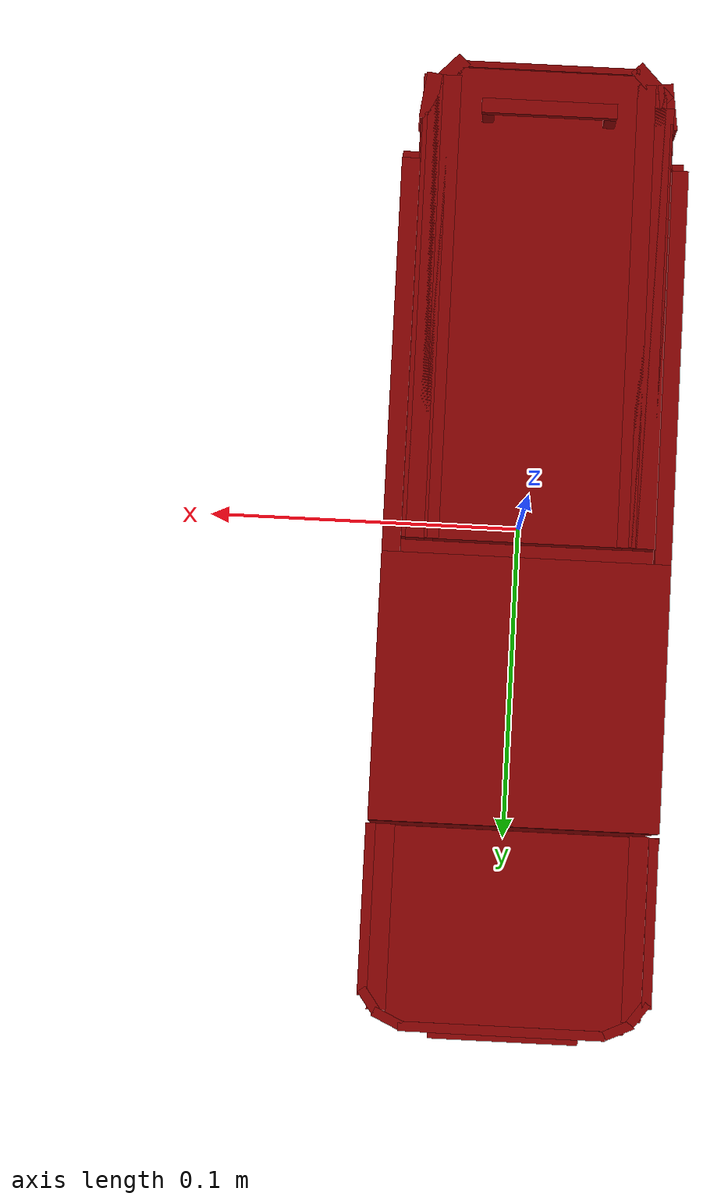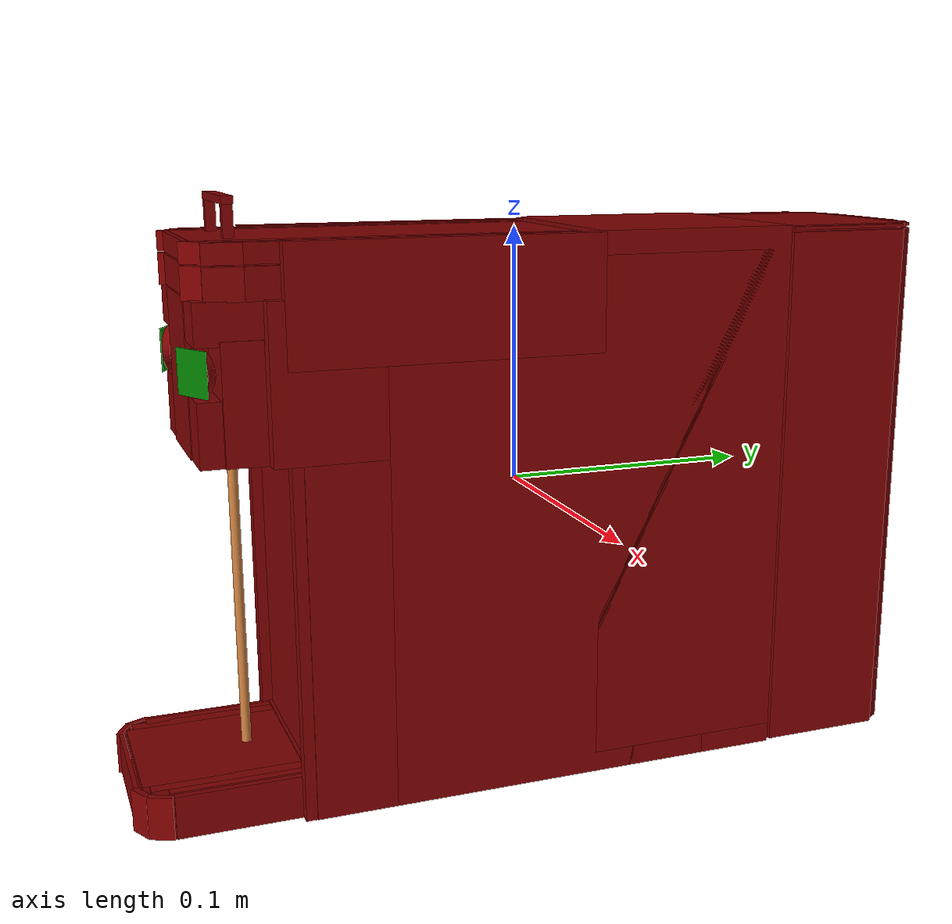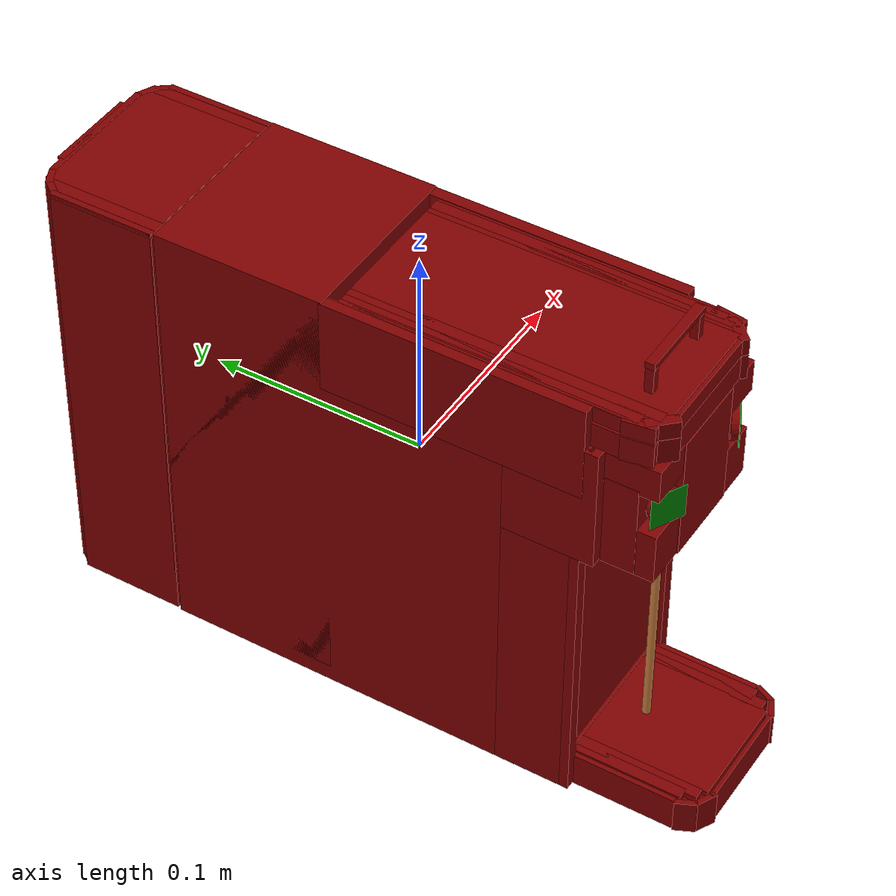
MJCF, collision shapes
<?xml version='1.0' encoding='UTF-8'?>
<mujoco model="model">
  <compiler angle="radian"/>
  <asset>
    <mesh file="visuals/Body001.obj" name="Body001_vis"/>
    <mesh file="visuals/Button001.obj" name="Button001_vis"/>
    <mesh file="visuals/Button002.obj" name="Button002_vis"/>
    <mesh file="visuals/Container001_Clear.obj" name="Container001_Clear_vis"/>
    <mesh file="visuals/Lid001.obj" name="Lid001_vis"/>
    <mesh file="visuals/Lid002.obj" name="Lid002_vis"/>
    <mesh file="visuals/Lid003.obj" name="Lid003_vis"/>
    <texture file="visuals/T_BC001.png" name="Body001_material" type="2d"/>
    <material name="Body001_material" rgba="1 1 1 1.0" texture="Body001_material" shininess="1" specular="1"/>
    <texture file="visuals/T_BC001.png" name="Button001_material" type="2d"/>
    <material name="Button001_material" rgba="1 1 1 1.0" texture="Button001_material" shininess="1" specular="1"/>
    <texture file="visuals/T_BC001.png" name="Button002_material" type="2d"/>
    <material name="Button002_material" rgba="1 1 1 1.0" texture="Button002_material" shininess="1" specular="1"/>
    <texture file="visuals/T_BC001.png" name="Container001_Clear_material" type="2d"/>
    <material name="Container001_Clear_material" rgba="1 1 1 0.08298748731613159" texture="Container001_Clear_material" shininess="0.4472135901451111" specular="0.3103448502657381"/>
    <texture file="visuals/T_BC001.png" name="Lid003_material" type="2d"/>
    <material name="Lid003_material" rgba="1 1 1 1.0" texture="Lid003_material" shininess="1" specular="1"/>
    <texture file="visuals/T_BC001.png" name="Lid001_material" type="2d"/>
    <material name="Lid001_material" rgba="1 1 1 1.0" texture="Lid001_material" shininess="1" specular="1"/>
    <texture file="visuals/T_BC001.png" name="Lid002_material" type="2d"/>
    <material name="Lid002_material" rgba="1 1 1 1.0" texture="Lid002_material" shininess="1" specular="1"/>
  </asset>
  <default>
    <default class="visual">
      <geom conaffinity="0" contype="0" group="1" type="mesh"/>
    </default>
    <default class="collision">
      <geom group="0" rgba="0.5 0 0 0.5"/>
    </default>
    <default class="spawn">
      <geom group="0" rgba="1 1 1 0.5" contype="0" conaffinity="0"/>
      <site group="0" rgba="1 1 1 0.5"/>
    </default>
    <default class="region">
      <geom group="1" conaffinity="0" contype="0" rgba="0 1 0 0"/>
    </default>
  </default>
  <worldbody>
    <body>
      <body name="object">
        <geom class="collision" type="box" pos="-0.029612 -0.129878 0.055853" size="0.00828668475151062 0.00011803032975876704 0.00828668475151062" quat="0.9721991419792175 0.0 -0.0 -0.23415549099445343" name="start_button_1" rgba="0.0 0.5 0 0.5"/>
        <geom class="collision" type="box" pos="0.029046 -0.129866 0.055197" size="0.008370036259293556 9.648865670897067e-05 0.008370036259293556" quat="0.9687836766242981 0.0 0.0 0.24790772795677185" name="start_button_2" rgba="0.0 0.5 0 0.5"/>
        <site rgba="0 0 0 0" size="0.009999999776482582 0.009999999776482582" pos="-0.000829 -0.113306 -0.095736" name="receptacle_place_site"/>
        <site type="cylinder" rgba="0.8 0.5 0.25 1" size="0.0019026369554921985 0.0666009858250618" pos="-0.000687 -0.113045 -0.044725" name="coffee_liquid"/>
        <geom mesh="Body001_vis" type="mesh" solimp="0.998 0.998 0.001" solref="0.001 1" density="100" friction="0.95 0.3 0.1" class="visual" material="Body001_material"/>
        <geom class="collision" type="box" pos="-0.000186 0.058241 -0.002481" size="0.04281938076019287 0.03963854908943176 0.10315670818090439" quat="1.0 0.0 0.0 0.0"/>
        <geom class="collision" type="box" pos="-0.000186 0.016955 -0.010958" size="0.04281938076019287 0.08092467486858368 0.10279447585344315" quat="1.0 0.0 0.0 0.0"/>
        <geom class="collision" type="box" pos="-0.000259 -0.113828 0.044627" size="0.03818332776427269 0.0075566209852695465 0.022165751084685326" quat="1.0 0.0 0.0 0.0"/>
        <geom class="collision" type="box" pos="0.039926 -0.039870 0.077975" size="0.002708232030272484 0.059747010469436646 0.022165751084685326" quat="1.0 0.0 0.0 0.0"/>
        <geom class="collision" type="box" pos="-0.040585 -0.039870 0.077975" size="0.002477986505255103 0.059747010469436646 0.022165751084685326" quat="1.0 0.0 0.0 0.0"/>
        <geom class="collision" type="box" pos="-0.000186 -0.083830 0.051270" size="0.04281938076019287 0.021974705159664154 0.029109559953212738" quat="1.0 0.0 0.0 0.0"/>
        <geom class="collision" type="box" pos="-0.002555 -0.095259 0.051270" size="0.04045034572482109 0.007080241106450558 0.029109559953212738" quat="1.0 0.0 0.0 0.0"/>
        <geom class="collision" type="box" pos="-0.000144 -0.126465 0.051270" size="0.0190542321652174 0.0040451157838106155 0.029109559953212738" quat="1.0 0.0 0.0 0.0"/>
        <geom class="collision" type="box" pos="-0.024141 -0.117998 0.072679" size="0.014108678326010704 0.012014230713248253 0.0077003673650324345" quat="1.0 0.0 0.0 0.0"/>
        <geom class="collision" type="box" pos="0.036652 -0.087793 0.085881" size="0.0009097842848859727 0.025937102735042572 0.005930944811552763" quat="1.0 0.0 0.0 0.0"/>
        <geom class="collision" type="box" pos="-0.037621 -0.087793 0.085881" size="0.0009097842848859727 0.025937102735042572 0.005930944811552763" quat="1.0 0.0 0.0 0.0"/>
        <geom class="collision" type="box" pos="-0.001228 -0.129061 0.085881" size="0.025937102735042572 0.0009271661983802915 0.005930944811552763" quat="1.0 0.0 0.0 0.0"/>
        <geom class="collision" type="box" pos="0.030188 -0.125343 0.085881" size="0.0023218055721372366 0.007041084114462137 0.005930944811552763" quat="0.9278257489204407 0.0 -0.0 -0.37301385402679443"/>
        <geom class="collision" type="box" pos="0.035025 -0.118754 0.085881" size="0.0023218055721372366 0.007041084114462137 0.005930944811552763" quat="0.9977664351463318 0.0 -0.0 -0.06679913401603699"/>
        <geom class="collision" type="box" pos="-0.035890 -0.118754 0.085881" size="0.0023218055721372366 0.007041084114462137 0.005930944811552763" quat="0.9977664351463318 0.0 0.0 0.06679913401603699"/>
        <geom class="collision" type="box" pos="-0.031053 -0.125343 0.085881" size="0.0023218055721372366 0.007041084114462137 0.005930944811552763" quat="0.9278257489204407 0.0 0.0 0.37301385402679443"/>
        <geom class="collision" type="box" pos="-0.000186 -0.014311 -0.042167" size="0.04281938076019287 0.08092467486858368 0.07158534228801727" quat="1.0 0.0 0.0 0.0"/>
        <geom class="collision" type="box" pos="-0.040144 -0.018596 -0.042167" size="0.002860593143850565 0.08092467486858368 0.07158534228801727" quat="1.0 0.0 0.0 0.0"/>
        <geom class="collision" type="box" pos="0.039408 -0.018596 -0.042167" size="0.002860593143850565 0.08092467486858368 0.07158534228801727" quat="1.0 0.0 0.0 0.0"/>
        <geom class="collision" type="box" pos="-0.001228 -0.158485 -0.105887" size="0.025937102735042572 0.0009095130953937769 0.008428726345300674" quat="1.0 0.0 0.0 0.0"/>
        <geom class="collision" type="box" pos="-0.037183 -0.120894 -0.105887" size="0.0011607054620981216 0.026026032865047455 0.008428726345300674" quat="1.0 0.0 0.0 0.0"/>
        <geom class="collision" type="box" pos="0.036296 -0.120252 -0.105887" size="0.0012664756504818797 0.026086440309882164 0.008428726345300674" quat="1.0 0.0 0.0 0.0"/>
        <geom class="collision" type="box" pos="-0.000760 -0.096289 -0.105279" size="0.03672110661864281 0.0007024210644885898 0.008472642861306667" quat="1.0 0.0 0.0 0.0"/>
        <geom class="collision" type="box" pos="-0.000760 -0.120693 -0.112969" size="0.03672110661864281 0.025887945666909218 0.0012902673333883286" quat="1.0 0.0 0.0 0.0"/>
        <geom class="collision" type="box" pos="0.000586 -0.131541 -0.112969" size="0.027859235182404518 0.025887945666909218 0.0012902673333883286" quat="1.0 0.0 0.0 0.0"/>
        <geom class="collision" type="box" pos="-0.000301 -0.129674 -0.112969" size="0.03514226898550987 0.024021495133638382 0.0012902673333883286" quat="1.0 0.0 0.0 0.0"/>
        <geom class="collision" type="box" pos="-0.000530 -0.133472 -0.112969" size="0.03067724034190178 0.023588351905345917 0.0012902673333883286" quat="1.0 0.0 0.0 0.0"/>
        <geom class="collision" type="box" pos="0.000043 0.111500 -0.101430" size="0.039785709232091904 0.03277358412742615 0.012086295522749424" quat="1.0 0.0 0.0 0.0"/>
        <geom class="collision" type="cylinder" pos="-0.000508 -0.113172 0.022708" size="0.004859991371631622 0.002221825532615185" quat="1.0 0.0 0.0 0.0"/>
        <geom class="collision" type="box" pos="-0.000340 0.122830 -0.101430" size="0.028532451018691063 0.03277358412742615 0.012086295522749424" quat="1.0 0.0 0.0 0.0"/>
        <geom class="collision" type="box" pos="-0.000446 0.121380 -0.101430" size="0.03289170563220978 0.03228046000003815 0.012086295522749424" quat="1.0 0.0 0.0 0.0"/>
        <geom class="collision" type="box" pos="-0.000287 0.118969 -0.101430" size="0.03624089062213898 0.0323156863451004 0.012086295522749424" quat="1.0 0.0 0.0 0.0"/>
        <geom class="collision" type="box" pos="-0.000074 0.116134 -0.101430" size="0.038154710084199905 0.03235090523958206 0.012086295522749424" quat="1.0 0.0 0.0 0.0"/>
        <geom class="collision" type="box" pos="0.028702 -0.157096 -0.105887" size="0.0012664756504818797 0.004871442914009094 0.008428726345300674" quat="0.8530206084251404 0.0 -0.0 -0.5218772888183594"/>
        <geom class="collision" type="box" pos="0.034865 -0.150973 -0.105887" size="0.0012664756504818797 0.004871442914009094 0.008428726345300674" quat="0.9763013124465942 0.0 -0.0 -0.21641577780246735"/>
        <geom class="collision" type="box" pos="-0.035991 -0.150973 -0.105887" size="0.0012664756504818797 0.004871442914009094 0.008428726345300674" quat="0.9763013124465942 0.0 0.0 0.21641577780246735"/>
        <geom class="collision" type="box" pos="-0.029828 -0.157096 -0.105887" size="0.0012664756504818797 0.004871442914009094 0.008428726345300674" quat="0.8530206084251404 0.0 0.0 0.5218772292137146"/>
        <geom class="collision" type="box" pos="0.023427 -0.118051 0.072679" size="0.014003321528434753 0.012067361734807491 0.0077003673650324345" quat="1.0 0.0 0.0 0.0"/>
        <geom class="collision" type="box" pos="0.022765 -0.125758 0.034170" size="0.013341067358851433 0.00436016172170639 0.01185312494635582" quat="1.0 0.0 0.0 0.0"/>
        <geom class="collision" type="box" pos="-0.024141 -0.125663 0.034170" size="0.014108678326010704 0.004245874006301165 0.01185312494635582" quat="1.0 0.0 0.0 0.0"/>
        <body name="Button001">
          <joint axis="0.4599821865558624 0.8879281282424927 0.0" pos="-0.028690 -0.127892 0.055793" limited="true" name="Button001_joint" range="0.0 0.002" type="slide" damping="1" frictionloss="1" armature=".01" stiffness="0.05"/>
          <geom mesh="Button001_vis" type="mesh" solimp="0.998 0.998 0.001" solref="0.001 1" density="100" friction="0.95 0.3 0.1" class="visual" material="Button001_material"/>
          <geom class="collision" type="cylinder" pos="-0.028796 -0.128261 0.055853" size="0.00828668475151062 0.0014767893590033054" quat="0.6883477568626404 0.6883476972579956 -0.16179436445236206 -0.16179436445236206"/>
        </body>
        <body name="Button002">
          <joint axis="-0.47508662939071655 0.879939079284668 0.0" pos="0.027971 -0.127900 0.055335" limited="true" name="Button002_joint" range="0.0 0.002" type="slide" damping="1" frictionloss="1" armature=".01" stiffness="0.05"/>
          <geom mesh="Button002_vis" type="mesh" solimp="0.998 0.998 0.001" solref="0.001 1" density="100" friction="0.95 0.3 0.1" class="visual" material="Button002_material"/>
          <geom class="collision" type="cylinder" pos="0.028062 -0.128175 0.055197" size="0.008370036259293556 0.0016283096047118306" quat="0.6857515573501587 0.6857514977455139 0.1724669486284256 0.1724669635295868"/>
        </body>
        <body name="Container001_Clear">
          <joint axis="0.0 0.0 1.0" pos="-0.000025 0.128711 -0.007136" limited="true" name="Container001_Clear_joint" range="0.0 0.05" type="slide" damping="1" frictionloss="1" armature=".01" stiffness="0.05"/>
          <geom mesh="Container001_Clear_vis" type="mesh" solimp="0.998 0.998 0.001" solref="0.001 1" density="100" friction="0.95 0.3 0.1" class="visual" material="Container001_Clear_material"/>
          <geom class="collision" type="box" pos="0.000466 0.157355 -0.007427" size="0.030307166278362274 0.0014502555131912231 0.10539308935403824" quat="1.0 0.0 0.0 0.0"/>
          <geom class="collision" type="box" pos="-0.000290 0.099383 0.004284" size="0.04282332956790924 0.000379165488993749 0.09368192404508591" quat="1.0 0.0 0.0 0.0"/>
          <geom class="collision" type="box" pos="-0.041512 0.124081 -0.007427" size="0.0014502574922516942 0.02492881566286087 0.10539308935403824" quat="1.0 0.0 0.0 0.0"/>
          <geom class="collision" type="box" pos="0.039593 0.150334 -0.007427" size="0.0038900026120245457 0.0014502571430057287 0.10539308935403824" quat="0.8903114795684814 0.0 -0.0 -0.4553520679473877"/>
          <geom class="collision" type="box" pos="0.041664 0.123878 -0.007427" size="0.0014502574922516942 0.025131963193416595 0.10539308935403824" quat="1.0 0.0 0.0 0.0"/>
          <geom class="collision" type="box" pos="0.033979 0.155354 -0.007427" size="0.004526357166469097 0.0014502571430057287 0.10539308935403824" quat="0.9763031601905823 0.0 -0.0 -0.21640729904174805"/>
          <geom class="collision" type="box" pos="-0.033584 0.155354 -0.007427" size="0.004526357166469097 0.0014502571430057287 0.10539308935403824" quat="0.9763031601905823 0.0 0.0 0.21640729904174805"/>
          <geom class="collision" type="box" pos="-0.039198 0.150334 -0.007427" size="0.0038900026120245457 0.0014502571430057287 0.10539308935403824" quat="0.8903114795684814 0.0 0.0 0.4553520679473877"/>
          <geom class="collision" type="box" pos="-0.037093 0.125849 -0.088580" size="0.002847219817340374 0.027041485533118248 0.0012696986086666584" quat="1.0 0.0 0.0 0.0"/>
          <geom class="collision" type="box" pos="-0.000213 0.127971 -0.088580" size="0.0348968505859375 0.028870925307273865 0.001269702217541635" quat="1.0 0.0 0.0 0.0"/>
          <geom class="collision" type="box" pos="0.037400 0.125849 -0.088580" size="0.0028472342528402805 0.02704160287976265 0.0012697059428319335" quat="1.0 0.0 0.0 0.0"/>
          <body name="Lid003">
            <joint axis="1.0 0.0 0.0" pos="-0.000028 0.099157 0.099790" limited="true" name="Lid003_joint" range="0.0 1.5707963267948966" type="hinge" damping="1" frictionloss="1" armature=".01" stiffness="0.05"/>
            <geom mesh="Lid003_vis" type="mesh" solimp="0.998 0.998 0.001" solref="0.001 1" density="100" friction="0.95 0.3 0.1" class="visual" material="Lid003_material"/>
            <geom class="collision" type="box" pos="-0.037093 0.125849 0.099398" size="0.002847270807251334 0.02704189345240593 0.0004948641289956868" quat="1.0 0.0 0.0 0.0"/>
            <geom class="collision" type="box" pos="-0.039198 0.150334 0.099390" size="0.003890001680701971 0.0014502559788525105 0.0005955349188297987" quat="0.8903114795684814 0.0 0.0 0.4553520679473877"/>
            <geom class="collision" type="box" pos="-0.033584 0.155354 0.099390" size="0.004526355769485235 0.0014502559788525105 0.0005955256056040525" quat="0.9763031601905823 0.0 0.0 0.21640729904174805"/>
            <geom class="collision" type="box" pos="0.033979 0.155354 0.099390" size="0.004526355769485235 0.0014502559788525105 0.0005955256056040525" quat="0.9763031601905823 0.0 -0.0 -0.21640729904174805"/>
            <geom class="collision" type="box" pos="0.041664 0.123878 0.099390" size="0.0014502574922516942 0.025131961330771446 0.0005955410888418555" quat="1.0 0.0 0.0 0.0"/>
            <geom class="collision" type="box" pos="0.039593 0.150334 0.099390" size="0.003890001680701971 0.0014502559788525105 0.0005955256056040525" quat="0.8903114795684814 0.0 -0.0 -0.4553520679473877"/>
            <geom class="collision" type="box" pos="-0.041512 0.124081 0.099390" size="0.0014502574922516942 0.02492881566286087 0.0005955410888418555" quat="1.0 0.0 0.0 0.0"/>
            <geom class="collision" type="box" pos="-0.000290 0.100352 0.099575" size="0.04282332956790924 0.001347651588730514 0.00021971328533254564" quat="1.0 0.0 0.0 0.0"/>
            <geom class="collision" type="box" pos="0.037400 0.125849 0.099398" size="0.002847299911081791 0.027042126283049583 0.0004948677960783243" quat="1.0 0.0 0.0 0.0"/>
            <geom class="collision" type="box" pos="-0.000213 0.127971 0.099257" size="0.034897491335868835 0.0288715660572052 0.0006357503589242697" quat="1.0 0.0 0.0 0.0"/>
            <geom class="collision" type="box" pos="0.000466 0.157355 0.099390" size="0.030307166278362274 0.0014502555131912231 0.0005955410888418555" quat="1.0 0.0 0.0 0.0"/>
            <geom class="collision" type="box" pos="0.000084 0.158880 0.099390" size="0.021920375525951385 0.0015608964022248983 0.0005955410888418555" quat="1.0 0.0 0.0 0.0"/>
          </body>
        </body>
        <body name="Lid001">
          <joint axis="-1.0 0.0 0.0" pos="-0.000338 0.013316 0.095704" limited="true" name="Lid001_joint" range="0.0 1.5707963267948966" type="hinge" damping="1" frictionloss="1" armature=".01" stiffness="0.05"/>
          <geom mesh="Lid001_vis" type="mesh" solimp="0.998 0.998 0.001" solref="0.001 1" density="100" friction="0.95 0.3 0.1" class="visual" material="Lid001_material"/>
          <geom class="collision" type="box" pos="-0.031053 -0.125343 0.096125" size="0.0023218055721372366 0.007041084114462137 0.0037267175503075123" quat="0.9278257489204407 0.0 0.0 0.37301385402679443"/>
          <geom class="collision" type="box" pos="-0.035890 -0.118754 0.096125" size="0.0023218055721372366 0.007041084114462137 0.0037267175503075123" quat="0.9977664351463318 0.0 0.0 0.06679913401603699"/>
          <geom class="collision" type="box" pos="0.035025 -0.118754 0.096125" size="0.0023218055721372366 0.007041084114462137 0.0037267175503075123" quat="0.9977664351463318 0.0 -0.0 -0.06679913401603699"/>
          <geom class="collision" type="box" pos="0.030188 -0.125343 0.096125" size="0.0023218055721372366 0.007041084114462137 0.0037267175503075123" quat="0.9278257489204407 0.0 -0.0 -0.37301385402679443"/>
          <geom class="collision" type="box" pos="-0.001228 -0.129061 0.096125" size="0.025937102735042572 0.0009271661983802915 0.0037267175503075123" quat="1.0 0.0 0.0 0.0"/>
          <geom class="collision" type="box" pos="-0.037021 -0.049857 0.096125" size="0.0006139105535112321 0.06387326866388321 0.0037267175503075123" quat="1.0 0.0 0.0 0.0"/>
          <geom class="collision" type="box" pos="0.036444 -0.049857 0.096125" size="0.0006777755334042013 0.06387326866388321 0.0037267175503075123" quat="1.0 0.0 0.0 0.0"/>
          <geom class="collision" type="box" pos="-0.000390 -0.056843 0.096125" size="0.028062334284186363 0.0709967389702797 0.0037267175503075123" quat="1.0 0.0 0.0 0.0"/>
          <geom class="collision" type="box" pos="-0.029440 -0.055644 0.096125" size="0.002740152645856142 0.06970971822738647 0.0037267175503075123" quat="1.0 0.0 0.0 0.0"/>
          <geom class="collision" type="box" pos="-0.032857 -0.054476 0.096125" size="0.002740152645856142 0.06836119294166565 0.0037267175503075123" quat="1.0 0.0 0.0 0.0"/>
          <geom class="collision" type="box" pos="-0.034813 -0.052202 0.096125" size="0.0031016445718705654 0.06631949543952942 0.0037267175503075123" quat="1.0 0.0 0.0 0.0"/>
          <geom class="collision" type="box" pos="0.033132 -0.052202 0.096125" size="0.002740152645856142 0.06631949543952942 0.0037267175503075123" quat="1.0 0.0 0.0 0.0"/>
          <geom class="collision" type="box" pos="0.032233 -0.054476 0.096125" size="0.002740152645856142 0.06836119294166565 0.0037267175503075123" quat="1.0 0.0 0.0 0.0"/>
          <geom class="collision" type="box" pos="0.028816 -0.055644 0.096125" size="0.002740152645856142 0.06970971822738647 0.0037267175503075123" quat="1.0 0.0 0.0 0.0"/>
          <geom class="collision" type="box" pos="0.017622 -0.113397 0.105490" size="0.0017381656216457486 0.001953446539118886 0.006030825898051262" quat="1.0 0.0 0.0 0.0"/>
          <geom class="collision" type="box" pos="-0.018474 -0.113397 0.105490" size="0.0017381656216457486 0.001953446539118886 0.006030825898051262" quat="1.0 0.0 0.0 0.0"/>
          <geom class="collision" type="box" pos="-0.000213 -0.113397 0.112873" size="0.019999999552965164 0.0021867782343178988 0.001443729386664927" quat="1.0 0.0 0.0 0.0"/>
        </body>
        <body name="Lid002">
          <joint axis="0.0 0.0 1.0" pos="-0.000480 -0.127086 -0.098954" limited="true" name="Lid002_joint" range="0.0 0.02" type="slide" damping="1" frictionloss="1" armature=".01" stiffness="0.05" springref="-10"/>
          <geom mesh="Lid002_vis" type="mesh" solimp="0.998 0.998 0.001" solref="0.001 1" density="100" friction="0.95 0.3 0.1" class="visual" material="Lid002_material"/>
          <geom class="collision" type="box" pos="-0.029440 -0.125441 -0.098421" size="0.002740152645856142 0.028296662494540215 0.0014078175881877542" quat="1.0 0.0 0.0 0.0"/>
          <geom class="collision" type="box" pos="-0.000449 -0.126755 -0.098421" size="0.026719562709331512 0.02965646982192993 0.0014078175881877542" quat="1.0 0.0 0.0 0.0"/>
          <geom class="collision" type="box" pos="0.030094 -0.122405 -0.098421" size="0.004692950751632452 0.025170881301164627 0.0014078175881877542" quat="1.0 0.0 0.0 0.0"/>
          <geom class="collision" type="box" pos="-0.032857 -0.122575 -0.098421" size="0.002740152645856142 0.025415761396288872 0.0014078175881877542" quat="1.0 0.0 0.0 0.0"/>
          <geom class="collision" type="box" pos="0.028363 -0.125688 -0.098421" size="0.002740152645856142 0.028049133718013763 0.0014078175881877542" quat="1.0 0.0 0.0 0.0"/>
        </body>
        <geom class="region" name="reg_main" type="box" pos="-0.00021250000000000088 0.0006300000000000056 -0.007126500000000001" size="0.0427225 0.15976800000000002 0.10692650000000001"/>
      </body>
    </body>
  </worldbody>
  <actuator>
    <motor name="Button001_joint_actuator" joint="Button001_joint" gear="0.5"/>
    <motor name="Button002_joint_actuator" joint="Button002_joint" gear="0.5"/>
    <motor name="Container001_Clear_joint_actuator" joint="Container001_Clear_joint" gear="10"/>
    <motor name="Lid001_joint_actuator" joint="Lid001_joint" gear="10"/>
    <motor name="Lid002_joint_actuator" joint="Lid002_joint" gear="10"/>
    <motor name="Lid003_joint_actuator" joint="Lid003_joint" gear="10"/>
  </actuator>
</mujoco>
